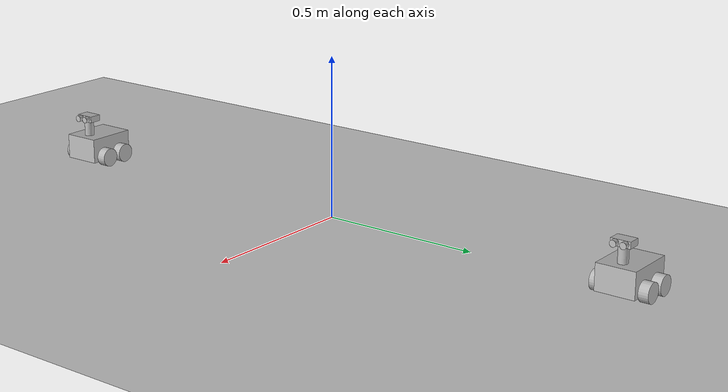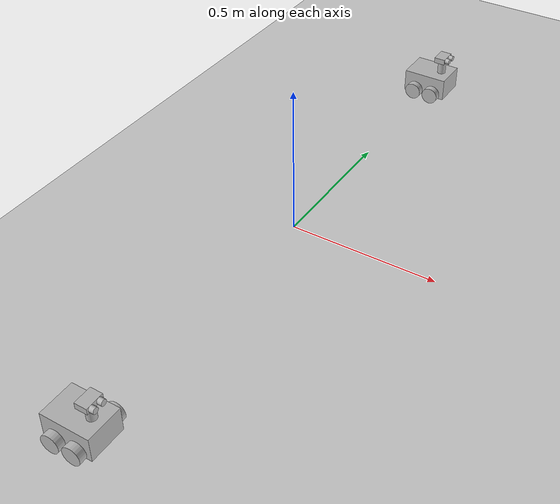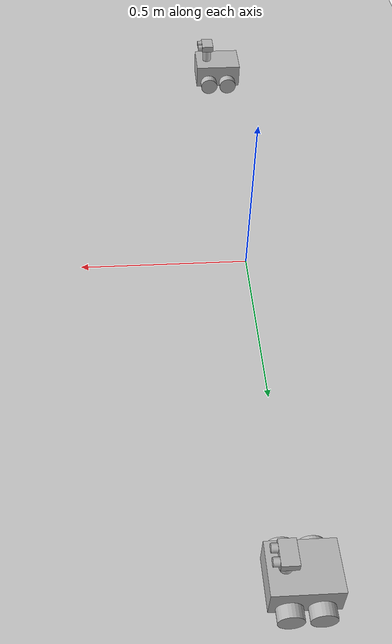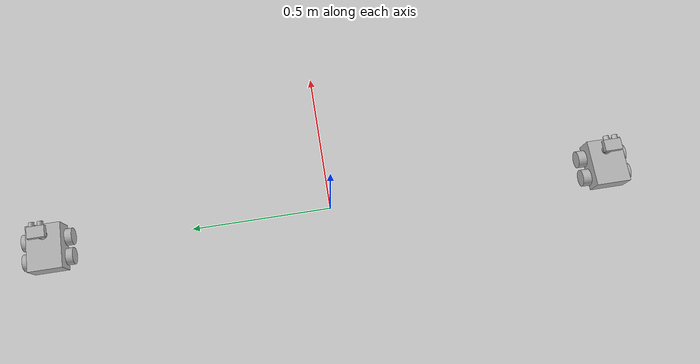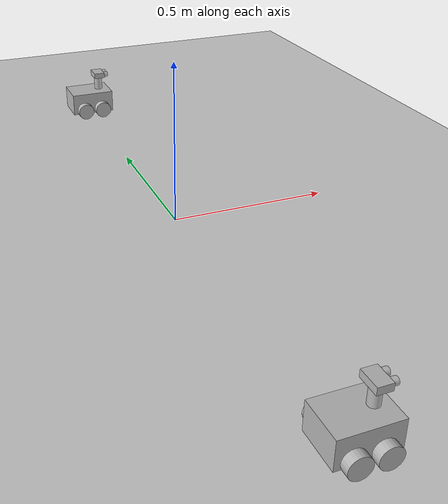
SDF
<?xml version="1.0"?>

<!-- To test a single robot -->
<sdf version="1.6">
  <world name="comm_check">

    <!-- A global light source -->
    <include>
      <uri>model://sun</uri>
    </include>

    <!-- A ground plane -->
    <include>
      <uri>model://ground_plane</uri>
    </include>

    <!-- Cool robots -->
    <include>
      <name>Simon</name>
      <uri>model://minimapper</uri>
      <pose>0 -1 0 0 0 0</pose>
    </include>

    <include>
      <name>Garfunkel</name>
      <uri>model://minimapper</uri>
      <pose>0 1 0 0 0 0</pose>
    </include>

  </world>
</sdf>

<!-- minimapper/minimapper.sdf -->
<!--

  Meet the MiMs.

  The cool kids of the block, these guys are the
  heart and soul of this project. Coordinate to
  map out the Hood for search and rescue.

-->

<sdf version="1.6">
  <model name="minimapper">

    <!--
      The Body of the MiM
      -------------------
    -->

    <link name="body">

      <pose>0 0 0.055 0 0 0</pose>
      <inertial>
        <mass>0.6</mass>
        <inertia>
          <ixx>0.00104</ixx>
          <iyy>0.00160</iyy>
          <izz>0.00200</izz>
          <ixy>0</ixy>
          <iyz>0</iyz>
          <ixz>0</ixz>
        </inertia>
      </inertial>

      <collision name="body_collision">
        <geometry>
          <box><size>0.16 0.12 0.08</size></box>
        </geometry>
      </collision>

      <visual name="body_visual">
        <geometry>
          <box><size>0.16 0.12 0.08</size></box>
        </geometry>
      </visual>
    </link>

    <!--
      Front Right Wheel of the MiM
      ----------------------------
    -->

    <link name="wheel_fr">
      <pose>0.035 0.075 0.03 1.5708 0 0</pose>
      <inertial>
        <mass>0.5</mass>
        <inertia>
          <ixx>0.000150</ixx>
          <iyy>0.000150</iyy>
          <izz>0.000225</izz>
          <ixy>0</ixy>
          <iyz>0</iyz>
          <ixz>0</ixz>
        </inertia>
      </inertial>
      <collision name="wheel_fr_collision">
        <geometry>
          <cylinder>
            <radius>0.03</radius>
            <length>0.03</length>
          </cylinder>
        </geometry>
      </collision>
      <visual name="wheel_fr_visual">
        <geometry>
          <cylinder>
            <radius>0.03</radius>
            <length>0.03</length>
          </cylinder>
        </geometry>
      </visual>
    </link>

    <joint name="wheel_fr_joint" type="revolute">
      <parent>body</parent>
      <child>wheel_fr</child>
      <axis>
        <xyz>0 0 1</xyz>
        <use_parent_model_frame>0</use_parent_model_frame>
      </axis>
    </joint>

    <!--
      Front Left Wheel of the MiM
      ---------------------------
    -->

    <link name="wheel_fl">
      <pose>0.035 -0.07 0.03 1.5708 0 0</pose>
      <inertial>
        <mass>0.5</mass>
        <inertia>
          <ixx>0.000150</ixx>
          <iyy>0.000150</iyy>
          <izz>0.000225</izz>
          <ixy>0</ixy>
          <iyz>0</iyz>
          <ixz>0</ixz>
        </inertia>
      </inertial>
      <collision name="wheel_fl_collision">
        <geometry>
          <cylinder>
            <radius>0.03</radius>
            <length>0.03</length>
          </cylinder>
        </geometry>
      </collision>
      <visual name="wheel_fl_visual">
        <geometry>
          <cylinder>
            <radius>0.03</radius>
            <length>0.03</length>
          </cylinder>
        </geometry>
      </visual>
    </link>

    <joint name="wheel_fl_joint" type="revolute">
      <parent>body</parent>
      <child>wheel_fl</child>
      <axis>
        <xyz>0 0 1</xyz>
        <use_parent_model_frame>0</use_parent_model_frame>
      </axis>
    </joint>

    <!--
      Rear Right Wheel of the MiM
      ---------------------------
    -->

    <link name="wheel_rr">
      <pose>-0.035 0.075 0.03 1.5708 0 0</pose>
      <inertial>
        <mass>0.5</mass>
        <inertia>
          <ixx>0.000150</ixx>
          <iyy>0.000150</iyy>
          <izz>0.000225</izz>
          <ixy>0</ixy>
          <iyz>0</iyz>
          <ixz>0</ixz>
        </inertia>
      </inertial>
      <collision name="wheel_rr_collision">
        <geometry>
          <cylinder>
            <radius>0.03</radius>
            <length>0.03</length>
          </cylinder>
        </geometry>
      </collision>
      <visual name="wheel_rr_visual">
        <geometry>
          <cylinder>
            <radius>0.03</radius>
            <length>0.03</length>
          </cylinder>
        </geometry>
      </visual>
    </link>

    <joint name="wheel_rr_joint" type="revolute">
      <parent>body</parent>
      <child>wheel_rr</child>
      <axis>
        <xyz>0 0 1</xyz>
        <use_parent_model_frame>0</use_parent_model_frame>
      </axis>
    </joint>

    <!--
      Rear Left Wheel of the MiM
      ---------------------------
    -->

    <link name="wheel_rl">
      <pose>-0.035 -0.07 0.03 1.5708 0 0</pose>
      <inertial>
        <mass>0.5</mass>
        <inertia>
          <ixx>0.000150</ixx>
          <iyy>0.000150</iyy>
          <izz>0.000225</izz>
          <ixy>0</ixy>
          <iyz>0</iyz>
          <ixz>0</ixz>
        </inertia>
      </inertial>
      <collision name="wheel_rl_collision">
        <geometry>
          <cylinder>
            <radius>0.03</radius>
            <length>0.03</length>
          </cylinder>
        </geometry>
      </collision>
      <visual name="wheel_rl_visual">
        <geometry>
          <cylinder>
            <radius>0.03</radius>
            <length>0.03</length>
          </cylinder>
        </geometry>
      </visual>
    </link>

    <joint name="wheel_rl_joint" type="revolute">
      <parent>body</parent>
      <child>wheel_rl</child>
      <axis>
        <xyz>0 0 1</xyz>
        <use_parent_model_frame>0</use_parent_model_frame>
      </axis>
    </joint>

    <!--
      The Visual System
      -----------------
    -->

    <include>
      <uri>model://vision</uri>
      <pose>0.04 0 0.095 0 0 0</pose>
    </include>

    <joint name="neck_base_joint" type="fixed">
      <pose>0.04 0 0.095 0 0 0</pose>
      <parent>body</parent>
      <child>vision::neck</child>
    </joint>

    <!--
      MiM Control System
      ------------------
    -->

    <plugin name="mim_control" filename="minimapper.so">
    </plugin>

  </model>
</sdf>

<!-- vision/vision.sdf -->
<!--

  Meet the Visions.

  The visual system for a MiM. Can detect and
  range objects within its visual cone. Allows
  the MiM to "stick its neck out" for mapping.

-->

<sdf version="1.6">
  <model name="vision">

    <!--
      The Neck of the Visual System
      -----------------------------
    -->

    <link name="neck">

      <pose>0 0 0.025 0 0 0</pose>
      <inertial>
        <mass>0.1</mass>
        <inertia>
          <ixx>0.00002646</ixx>
          <iyy>0.00002646</iyy>
          <izz>0.00001125</izz>
          <ixy>0</ixy>
          <iyz>0</iyz>
          <ixz>0</ixz>
        </inertia>
      </inertial>

      <collision name="neck_collision">
        <geometry>
          <cylinder>
            <radius>0.015</radius>
            <length>0.050</length>
          </cylinder>
        </geometry>
      </collision>

      <visual name="neck_visual">
        <geometry>
          <cylinder>
            <radius>0.015</radius>
            <length>0.050</length>
          </cylinder>
        </geometry>
      </visual>
    </link>

    <!--
      The Head of the Visual System
      -----------------------------
    -->

    <link name="head">

      <pose>0 0 0.060 0 0 0</pose>
      <inertial>
        <mass>0.1</mass>
        <inertia>
          <ixx>0.00003333</ixx>
          <iyy>0.00001667</iyy>
          <izz>0.00004333</izz>
          <ixy>0</ixy>
          <iyz>0</iyz>
          <ixz>0</ixz>
        </inertia>
      </inertial>

      <collision name="head_collision">
        <geometry>
          <box><size>0.04 0.06 0.02</size></box>
        </geometry>
      </collision>

      <visual name="head_visual">
        <geometry>
          <box><size>0.04 0.06 0.02</size></box>
        </geometry>
      </visual>
    </link>

    <!--
      The Top Joint of the Neck
      -------------------------

      The bottom is attached to the MiM.
    -->

    <joint name="neck_top_joint" type="revolute">

      <pose>0 0 -0.01 0 0 0</pose>
      <parent>neck</parent>
      <child>head</child>

      <axis>
        <xyz>0 0 1</xyz>
        <initial_position>-1.3091</initial_position>
        <limit>
          <lower>-1.309</lower>
          <upper>1.309</upper>
        </limit>
      </axis>
    </joint>

    <!--
      The Left Eye
      ------------

      The reciever for Ultrasonic sensor is on
      this eye.
    -->

    <link name="eye_left">

      <pose>0.0275 0.015 0.06 0 1.5708 3.1416</pose>
      <inertial>
        <mass>0.05</mass>
        <inertia>
          <ixx>0.00000219</ixx>
          <iyy>0.00000219</iyy>
          <izz>0.00000250</izz>
          <ixy>0</ixy>
          <iyz>0</iyz>
          <ixz>0</ixz>
        </inertia>
      </inertial>

      <collision name="eye_left_collision">
        <geometry>
          <cylinder>
            <radius>0.010</radius>
            <length>0.015</length>
          </cylinder>
        </geometry>
      </collision>

      <visual name="eye_left_visual">
        <geometry>
          <cylinder>
            <radius>0.010</radius>
            <length>0.015</length>
          </cylinder>
        </geometry>
      </visual>

      <!--
        A Ray sensor acting as an Ultrasonic sensor.
      -->
      <sensor name="sonar_sensor" type="ray">
        <pose>0 0 0 0 1.5708 0</pose>
        <always_on>1</always_on>
        <update_rate>100</update_rate>
        <visualize>1</visualize>

        <ray>
          <scan>
            <horizontal>
              <samples>32</samples>
              <resolution>1</resolution>
              <min_angle>-0.1309</min_angle>
              <max_angle>0.1309</max_angle>
            </horizontal>
          </scan>

          <range>
            <min>0.02</min>
            <max>5.00</max>
            <resolution>0.02</resolution>
          </range>
        </ray>

      </sensor>
    </link>

    <!--
      Fix the Eye to the Head.
    -->
    <joint name="eye_left_joint" type="fixed">
      <parent>head</parent>
      <child>eye_left</child>
    </joint>

    <!--
      The Right Eye
      -------------

      Simply for aesthetics.
    -->
    <link name="eye_right">

      <pose>0.0275 -0.015 0.06 0 1.5708 0</pose>
      <inertial>
        <mass>0.05</mass>
        <inertia>
          <ixx>0.00000219</ixx>
          <iyy>0.00000219</iyy>
          <izz>0.00000250</izz>
          <ixy>0</ixy>
          <iyz>0</iyz>
          <ixz>0</ixz>
        </inertia>
      </inertial>
      <collision name="eye_right_collision">
        <geometry>
          <cylinder>
            <radius>0.010</radius>
            <length>0.015</length>
          </cylinder>
        </geometry>
      </collision>
      <visual name="eye_right_visual">
        <geometry>
          <cylinder>
            <radius>0.010</radius>
            <length>0.015</length>
          </cylinder>
        </geometry>
      </visual>
    </link>

    <!--
      Fix the Eye to the Head.
    -->
    <joint name="eye_right_joint" type="fixed">
      <parent>head</parent>
      <child>eye_right</child>
    </joint>

    <!--
      Vision Control System
      ---------------------
    -->

    <plugin name="vison_control" filename="vision.so">
      <velocity>0.5</velocity>
      <pid>
        <p>0.005</p>
        <i>0</i>
        <d>0</d>
      </pid>
    </plugin>

  </model>
</sdf>
